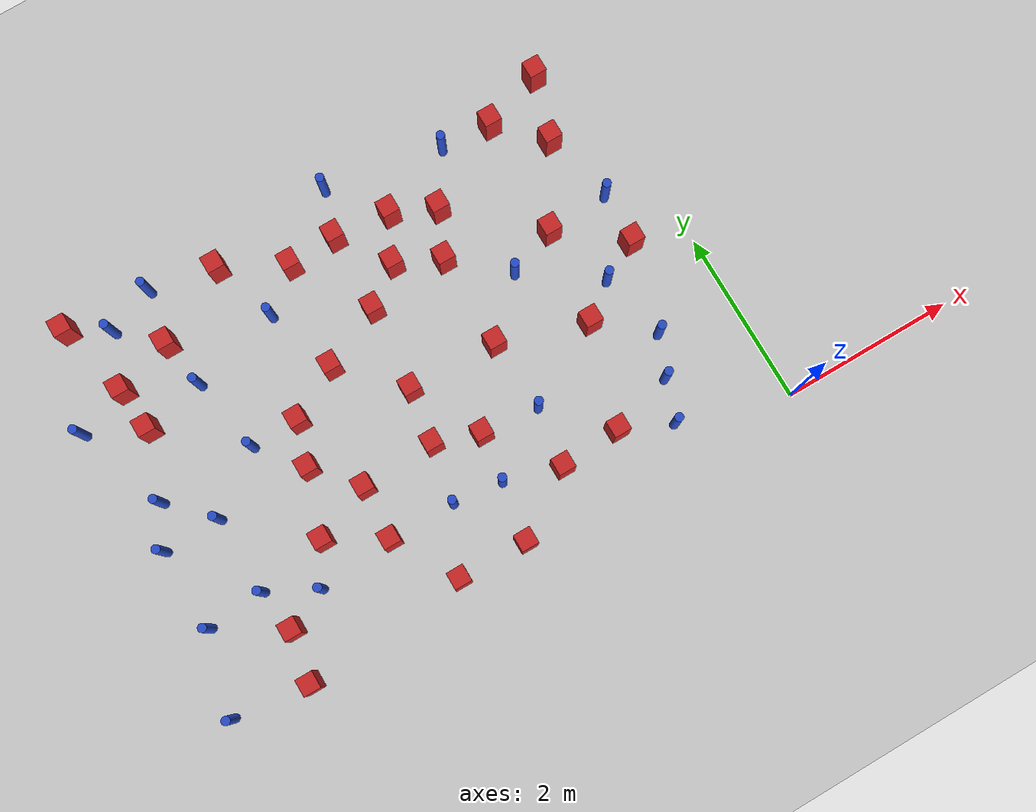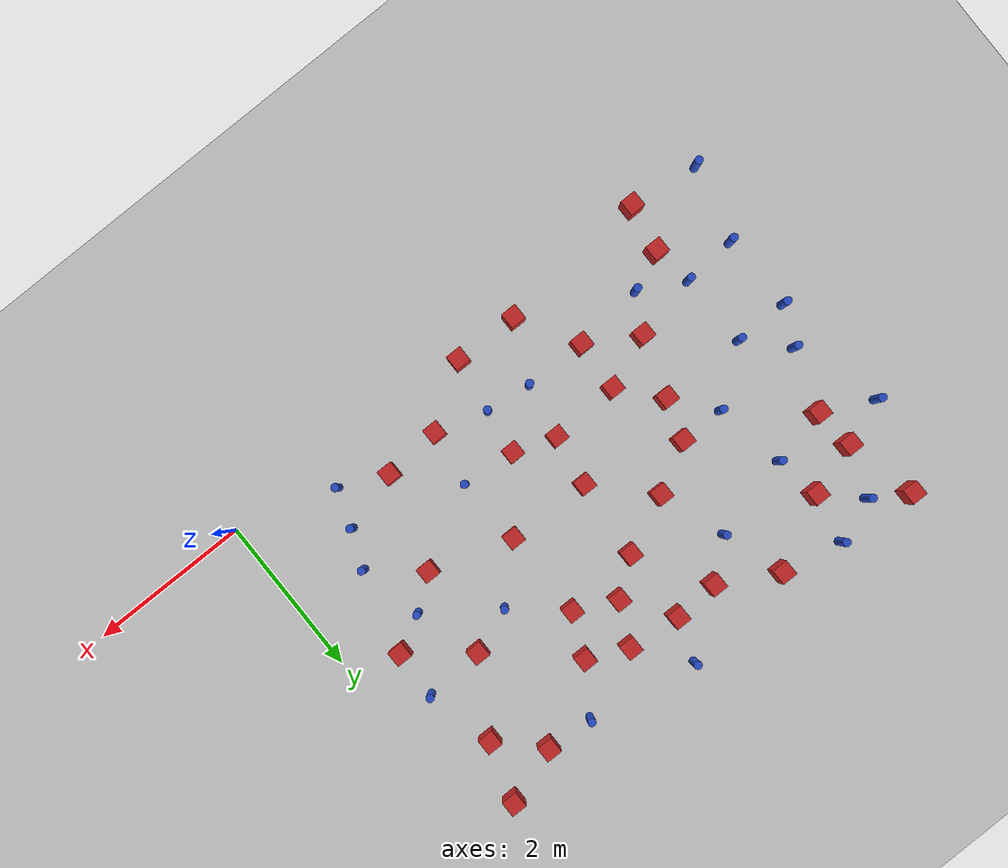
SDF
<sdf version="1.6">
 <world name="default">
  <model name="ground_plane">
   <static>1</static>
   <link name="link">
    <collision name="collision">
     <geometry><plane><normal>0 0 1</normal><size>100 100</size></plane></geometry>
     <surface><friction><ode><mu>100</mu><mu2>50</mu2></ode></friction></surface>
    </collision>
    <visual name="visual">
     <cast_shadows>0</cast_shadows>
     <geometry><plane><normal>0 0 1</normal><size>100 100</size></plane></geometry>
     <material>
      <ambient>1.0 1.0 1.0 1.0</ambient>
      <diffuse>0.8 0.8 0.8 1.0</diffuse>
      <specular>0.01 0.01 0.01 1.000000</specular>
     </material>
    </visual>
   </link>
  </model>
  <model name="pole_obstacle1">
   <static>true</static>
   <pose>-6.87773396307 0.0528595417723 -9.47619616065e-06 5.49618799738e-07 2.36310414073e-07 -1.55090534795e-07</pose>
   <link name="link">
    <pose>0 0 0.3 0 -0 0</pose>
    <inertial>
     <mass>1</mass>
     <inertia><ixx>0.145833</ixx><ixy>0</ixy><ixz>0</ixz><iyy>0.145833</iyy><iyz>0</iyz><izz>0.125</izz></inertia>
    </inertial>
    <collision name="collision">
     <geometry><cylinder><radius>0.05</radius><length>.6</length></cylinder></geometry>
    </collision>
    <visual name="visual">
     <geometry><cylinder><radius>0.05</radius><length>.6</length></cylinder></geometry>
     <material>
      <script><name>Gazebo/Blue</name><uri>file://media/materials/scripts/gazebo.material</uri></script>
     </material>
    </visual>
   </link>
  </model>
  <model name="square_post_obstacle12">
   <static>true</static>
   <pose>-2.50106417843 2.11142147697 -6.11067671241e-07 -5.50515727128e-06 -8.79689657224e-07 2.37013304536e-05</pose>
   <link name="link">
    <pose>0 0 0.25 0 -0 0</pose>
    <inertial>
     <mass>100</mass>
     <inertia>
      <ixx>0.166667</ixx>
      <ixy>0</ixy>
      <ixz>0</ixz>
      <iyy>0.166667</iyy>
      <iyz>0</iyz>
      <izz>0.166667</izz>
     </inertia>
    </inertial>
    <collision name="collision"><geometry><box><size>.2 .2 .5</size></box></geometry></collision>
    <visual name="visual">
     <geometry><box><size>.2 .2 .5</size></box></geometry>
     <material>
      <script><name>Gazebo/Red</name><uri>file://media/materials/scripts/gazebo.material</uri></script>
     </material>
    </visual>
   </link>
  </model>
  <model name="pole_obstacle13">
   <static>true</static>
   <pose>-5.41343163855 0.755619386022 -9.47619616065e-06 5.49618799737e-07 2.36310414061e-07 -1.550905348e-07</pose>
   <link name="link">
    <pose>0 0 0.3 0 -0 0</pose>
    <inertial>
     <mass>1</mass>
     <inertia><ixx>0.145833</ixx><ixy>0</ixy><ixz>0</ixz><iyy>0.145833</iyy><iyz>0</iyz><izz>0.125</izz></inertia>
    </inertial>
    <collision name="collision">
     <geometry><cylinder><radius>0.05</radius><length>.6</length></cylinder></geometry>
    </collision>
    <visual name="visual">
     <geometry><cylinder><radius>0.05</radius><length>.6</length></cylinder></geometry>
     <material>
      <script><name>Gazebo/Blue</name><uri>file://media/materials/scripts/gazebo.material</uri></script>
     </material>
    </visual>
   </link>
  </model>
  <model name="pole_obstacle15">
   <static>true</static>
   <pose>-5.97070912726 1.04615369268 -9.47619616065e-06 5.49618799737e-07 2.36310414071e-07 -1.55090534795e-07</pose>
   <link name="link">
    <pose>0 0 0.3 0 -0 0</pose>
    <inertial>
     <mass>1</mass>
     <inertia><ixx>0.145833</ixx><ixy>0</ixy><ixz>0</ixz><iyy>0.145833</iyy><iyz>0</iyz><izz>0.125</izz></inertia>
    </inertial>
    <collision name="collision">
     <geometry><cylinder><radius>0.05</radius><length>.6</length></cylinder></geometry>
    </collision>
    <visual name="visual">
     <geometry><cylinder><radius>0.05</radius><length>.6</length></cylinder></geometry>
     <material>
      <script><name>Gazebo/Blue</name><uri>file://media/materials/scripts/gazebo.material</uri></script>
     </material>
    </visual>
   </link>
  </model>
  <model name="square_post_obstacle29">
   <static>true</static>
   <pose>-1.29395501659 4.2736168441 -6.11067671241e-07 -5.50515727128e-06 -8.79689657224e-07 2.37013304536e-05</pose>
   <link name="link">
    <pose>0 0 0.25 0 -0 0</pose>
    <inertial>
     <mass>100</mass>
     <inertia>
      <ixx>0.166667</ixx>
      <ixy>0</ixy>
      <ixz>0</ixz>
      <iyy>0.166667</iyy>
      <iyz>0</iyz>
      <izz>0.166667</izz>
     </inertia>
    </inertial>
    <collision name="collision"><geometry><box><size>.2 .2 .5</size></box></geometry></collision>
    <visual name="visual">
     <geometry><box><size>.2 .2 .5</size></box></geometry>
     <material>
      <script><name>Gazebo/Red</name><uri>file://media/materials/scripts/gazebo.material</uri></script>
     </material>
    </visual>
   </link>
  </model>
  <model name="pole_obstacle24">
   <static>true</static>
   <pose>-5.31248529184 2.46069318207 -9.47619616065e-06 5.49618799738e-07 2.36310414051e-07 -1.55090534805e-07</pose>
   <link name="link">
    <pose>0 0 0.3 0 -0 0</pose>
    <inertial>
     <mass>1</mass>
     <inertia><ixx>0.145833</ixx><ixy>0</ixy><ixz>0</ixz><iyy>0.145833</iyy><iyz>0</iyz><izz>0.125</izz></inertia>
    </inertial>
    <collision name="collision">
     <geometry><cylinder><radius>0.05</radius><length>.6</length></cylinder></geometry>
    </collision>
    <visual name="visual">
     <geometry><cylinder><radius>0.05</radius><length>.6</length></cylinder></geometry>
     <material>
      <script><name>Gazebo/Blue</name><uri>file://media/materials/scripts/gazebo.material</uri></script>
     </material>
    </visual>
   </link>
  </model>
  <model name="pole_obstacle34">
   <static>true</static>
   <pose>-5.99398679914 1.95543988305 -9.47619616065e-06 5.49618799737e-07 2.36310414075e-07 -1.55090534793e-07</pose>
   <link name="link">
    <pose>0 0 0.3 0 -0 0</pose>
    <inertial>
     <mass>1</mass>
     <inertia><ixx>0.145833</ixx><ixy>0</ixy><ixz>0</ixz><iyy>0.145833</iyy><iyz>0</iyz><izz>0.125</izz></inertia>
    </inertial>
    <collision name="collision">
     <geometry><cylinder><radius>0.05</radius><length>.6</length></cylinder></geometry>
    </collision>
    <visual name="visual">
     <geometry><cylinder><radius>0.05</radius><length>.6</length></cylinder></geometry>
     <material>
      <script><name>Gazebo/Blue</name><uri>file://media/materials/scripts/gazebo.material</uri></script>
     </material>
    </visual>
   </link>
  </model>
  <model name="square_post_obstacle44">
   <static>true</static>
   <pose>-3.41731992865 4.02044685054 -6.11067671241e-07 -5.50515727128e-06 -8.79689657224e-07 2.37013304536e-05</pose>
   <link name="link">
    <pose>0 0 0.25 0 -0 0</pose>
    <inertial>
     <mass>100</mass>
     <inertia>
      <ixx>0.166667</ixx>
      <ixy>0</ixy>
      <ixz>0</ixz>
      <iyy>0.166667</iyy>
      <iyz>0</iyz>
      <izz>0.166667</izz>
     </inertia>
    </inertial>
    <collision name="collision"><geometry><box><size>.2 .2 .5</size></box></geometry></collision>
    <visual name="visual">
     <geometry><box><size>.2 .2 .5</size></box></geometry>
     <material>
      <script><name>Gazebo/Red</name><uri>file://media/materials/scripts/gazebo.material</uri></script>
     </material>
    </visual>
   </link>
  </model>
  <model name="square_post_obstacle51">
   <static>true</static>
   <pose>-3.53381424019 2.13756344961 -6.11067671241e-07 -5.50515727128e-06 -8.79689657224e-07 2.37013304536e-05</pose>
   <link name="link">
    <pose>0 0 0.25 0 -0 0</pose>
    <inertial>
     <mass>100</mass>
     <inertia>
      <ixx>0.166667</ixx>
      <ixy>0</ixy>
      <ixz>0</ixz>
      <iyy>0.166667</iyy>
      <iyz>0</iyz>
      <izz>0.166667</izz>
     </inertia>
    </inertial>
    <collision name="collision"><geometry><box><size>.2 .2 .5</size></box></geometry></collision>
    <visual name="visual">
     <geometry><box><size>.2 .2 .5</size></box></geometry>
     <material>
      <script><name>Gazebo/Red</name><uri>file://media/materials/scripts/gazebo.material</uri></script>
     </material>
    </visual>
   </link>
  </model>
  <model name="pole_obstacle51">
   <static>true</static>
   <pose>-3.75921423515 0.833750473704 -9.47619616065e-06 5.49618799738e-07 2.36310414075e-07 -1.55090534793e-07</pose>
   <link name="link">
    <pose>0 0 0.3 0 -0 0</pose>
    <inertial>
     <mass>1</mass>
     <inertia><ixx>0.145833</ixx><ixy>0</ixy><ixz>0</ixz><iyy>0.145833</iyy><iyz>0</iyz><izz>0.125</izz></inertia>
    </inertial>
    <collision name="collision">
     <geometry><cylinder><radius>0.05</radius><length>.6</length></cylinder></geometry>
    </collision>
    <visual name="visual">
     <geometry><cylinder><radius>0.05</radius><length>.6</length></cylinder></geometry>
     <material>
      <script><name>Gazebo/Blue</name><uri>file://media/materials/scripts/gazebo.material</uri></script>
     </material>
    </visual>
   </link>
  </model>
  <model name="pole_obstacle55">
   <static>true</static>
   <pose>-6.63668803881 0.99675324413 -9.47619616065e-06 5.49618799737e-07 2.36310414073e-07 -1.55090534792e-07</pose>
   <link name="link">
    <pose>0 0 0.3 0 -0 0</pose>
    <inertial>
     <mass>1</mass>
     <inertia><ixx>0.145833</ixx><ixy>0</ixy><ixz>0</ixz><iyy>0.145833</iyy><iyz>0</iyz><izz>0.125</izz></inertia>
    </inertial>
    <collision name="collision">
     <geometry><cylinder><radius>0.05</radius><length>.6</length></cylinder></geometry>
    </collision>
    <visual name="visual">
     <geometry><cylinder><radius>0.05</radius><length>.6</length></cylinder></geometry>
     <material>
      <script><name>Gazebo/Blue</name><uri>file://media/materials/scripts/gazebo.material</uri></script>
     </material>
    </visual>
   </link>
  </model>
  <model name="pole_obstacle60">
   <static>true</static>
   <pose>-4.4379792517 3.61402588025 -9.47619616065e-06 5.49618799738e-07 2.36310414051e-07 -1.55090534805e-07</pose>
   <link name="link">
    <pose>0 0 0.3 0 -0 0</pose>
    <inertial>
     <mass>1</mass>
     <inertia><ixx>0.145833</ixx><ixy>0</ixy><ixz>0</ixz><iyy>0.145833</iyy><iyz>0</iyz><izz>0.125</izz></inertia>
    </inertial>
    <collision name="collision">
     <geometry><cylinder><radius>0.05</radius><length>.6</length></cylinder></geometry>
    </collision>
    <visual name="visual">
     <geometry><cylinder><radius>0.05</radius><length>.6</length></cylinder></geometry>
     <material>
      <script><name>Gazebo/Blue</name><uri>file://media/materials/scripts/gazebo.material</uri></script>
     </material>
    </visual>
   </link>
  </model>
  <model name="square_post_obstacle62">
   <static>true</static>
   <pose>-5.88556385335 0.543653009103 -6.11067671241e-07 -5.50515727128e-06 -8.79689657224e-07 2.37013304536e-05</pose>
   <link name="link">
    <pose>0 0 0.25 0 -0 0</pose>
    <inertial>
     <mass>100</mass>
     <inertia>
      <ixx>0.166667</ixx>
      <ixy>0</ixy>
      <ixz>0</ixz>
      <iyy>0.166667</iyy>
      <iyz>0</iyz>
      <izz>0.166667</izz>
     </inertia>
    </inertial>
    <collision name="collision"><geometry><box><size>.2 .2 .5</size></box></geometry></collision>
    <visual name="visual">
     <geometry><box><size>.2 .2 .5</size></box></geometry>
     <material>
      <script><name>Gazebo/Red</name><uri>file://media/materials/scripts/gazebo.material</uri></script>
     </material>
    </visual>
   </link>
  </model>
  <model name="pole_obstacle61">
   <static>true</static>
   <pose>-6.82044860665 3.49995720872 -9.47619616065e-06 5.49618799738e-07 2.36310414051e-07 -1.55090534805e-07</pose>
   <link name="link">
    <pose>0 0 0.3 0 -0 0</pose>
    <inertial>
     <mass>1</mass>
     <inertia><ixx>0.145833</ixx><ixy>0</ixy><ixz>0</ixz><iyy>0.145833</iyy><iyz>0</iyz><izz>0.125</izz></inertia>
    </inertial>
    <collision name="collision">
     <geometry><cylinder><radius>0.05</radius><length>.6</length></cylinder></geometry>
    </collision>
    <visual name="visual">
     <geometry><cylinder><radius>0.05</radius><length>.6</length></cylinder></geometry>
     <material>
      <script><name>Gazebo/Blue</name><uri>file://media/materials/scripts/gazebo.material</uri></script>
     </material>
    </visual>
   </link>
  </model>
  <model name="square_post_obstacle65">
   <static>true</static>
   <pose>-6.44373114522 4.59457558672 -6.11067671241e-07 -5.50515727128e-06 -8.79689657224e-07 2.37013304536e-05</pose>
   <link name="link">
    <pose>0 0 0.25 0 -0 0</pose>
    <inertial>
     <mass>100</mass>
     <inertia>
      <ixx>0.166667</ixx>
      <ixy>0</ixy>
      <ixz>0</ixz>
      <iyy>0.166667</iyy>
      <iyz>0</iyz>
      <izz>0.166667</izz>
     </inertia>
    </inertial>
    <collision name="collision"><geometry><box><size>.2 .2 .5</size></box></geometry></collision>
    <visual name="visual">
     <geometry><box><size>.2 .2 .5</size></box></geometry>
     <material>
      <script><name>Gazebo/Red</name><uri>file://media/materials/scripts/gazebo.material</uri></script>
     </material>
    </visual>
   </link>
  </model>
  <model name="square_post_obstacle67">
   <static>true</static>
   <pose>-5.56579044386 3.91057907531 -6.11067671241e-07 -5.50515727128e-06 -8.79689657224e-07 2.37013304536e-05</pose>
   <link name="link">
    <pose>0 0 0.25 0 -0 0</pose>
    <inertial>
     <mass>100</mass>
     <inertia>
      <ixx>0.166667</ixx>
      <ixy>0</ixy>
      <ixz>0</ixz>
      <iyy>0.166667</iyy>
      <iyz>0</iyz>
      <izz>0.166667</izz>
     </inertia>
    </inertial>
    <collision name="collision"><geometry><box><size>.2 .2 .5</size></box></geometry></collision>
    <visual name="visual">
     <geometry><box><size>.2 .2 .5</size></box></geometry>
     <material>
      <script><name>Gazebo/Red</name><uri>file://media/materials/scripts/gazebo.material</uri></script>
     </material>
    </visual>
   </link>
  </model>
  <model name="square_post_obstacle79">
   <static>true</static>
   <pose>-4.15420953803 2.78749700027 -6.11067671241e-07 -5.50515727128e-06 -8.79689657224e-07 2.37013304536e-05</pose>
   <link name="link">
    <pose>0 0 0.25 0 -0 0</pose>
    <inertial>
     <mass>100</mass>
     <inertia>
      <ixx>0.166667</ixx>
      <ixy>0</ixy>
      <ixz>0</ixz>
      <iyy>0.166667</iyy>
      <iyz>0</iyz>
      <izz>0.166667</izz>
     </inertia>
    </inertial>
    <collision name="collision"><geometry><box><size>.2 .2 .5</size></box></geometry></collision>
    <visual name="visual">
     <geometry><box><size>.2 .2 .5</size></box></geometry>
     <material>
      <script><name>Gazebo/Red</name><uri>file://media/materials/scripts/gazebo.material</uri></script>
     </material>
    </visual>
   </link>
  </model>
  <model name="square_post_obstacle81">
   <static>true</static>
   <pose>-0.81365176295 3.78166607979 -6.11067671241e-07 -5.50515727128e-06 -8.79689657224e-07 2.37013304536e-05</pose>
   <link name="link">
    <pose>0 0 0.25 0 -0 0</pose>
    <inertial>
     <mass>100</mass>
     <inertia>
      <ixx>0.166667</ixx>
      <ixy>0</ixy>
      <ixz>0</ixz>
      <iyy>0.166667</iyy>
      <iyz>0</iyz>
      <izz>0.166667</izz>
     </inertia>
    </inertial>
    <collision name="collision"><geometry><box><size>.2 .2 .5</size></box></geometry></collision>
    <visual name="visual">
     <geometry><box><size>.2 .2 .5</size></box></geometry>
     <material>
      <script><name>Gazebo/Red</name><uri>file://media/materials/scripts/gazebo.material</uri></script>
     </material>
    </visual>
   </link>
  </model>
  <model name="square_post_obstacle83">
   <static>true</static>
   <pose>-2.76410070718 3.95368345906 -6.11067671241e-07 -5.50515727128e-06 -8.79689657224e-07 2.37013304536e-05</pose>
   <link name="link">
    <pose>0 0 0.25 0 -0 0</pose>
    <inertial>
     <mass>100</mass>
     <inertia>
      <ixx>0.166667</ixx>
      <ixy>0</ixy>
      <ixz>0</ixz>
      <iyy>0.166667</iyy>
      <iyz>0</iyz>
      <izz>0.166667</izz>
     </inertia>
    </inertial>
    <collision name="collision"><geometry><box><size>.2 .2 .5</size></box></geometry></collision>
    <visual name="visual">
     <geometry><box><size>.2 .2 .5</size></box></geometry>
     <material>
      <script><name>Gazebo/Red</name><uri>file://media/materials/scripts/gazebo.material</uri></script>
     </material>
    </visual>
   </link>
  </model>
  <model name="pole_obstacle101">
   <static>true</static>
   <pose>-6.00860608089 4.331102928 -9.47619616065e-06 5.49618799737e-07 2.36310414037e-07 -1.55090534814e-07</pose>
   <link name="link">
    <pose>0 0 0.3 0 -0 0</pose>
    <inertial>
     <mass>1</mass>
     <inertia><ixx>0.145833</ixx><ixy>0</ixy><ixz>0</ixz><iyy>0.145833</iyy><iyz>0</iyz><izz>0.125</izz></inertia>
    </inertial>
    <collision name="collision">
     <geometry><cylinder><radius>0.05</radius><length>.6</length></cylinder></geometry>
    </collision>
    <visual name="visual">
     <geometry><cylinder><radius>0.05</radius><length>.6</length></cylinder></geometry>
     <material>
      <script><name>Gazebo/Blue</name><uri>file://media/materials/scripts/gazebo.material</uri></script>
     </material>
    </visual>
   </link>
  </model>
  <model name="square_post_obstacle95">
   <static>true</static>
   <pose>-6.22444925274 3.70217358611 -6.11067671241e-07 -5.50515727128e-06 -8.79689657224e-07 2.37013304536e-05</pose>
   <link name="link">
    <pose>0 0 0.25 0 -0 0</pose>
    <inertial>
     <mass>100</mass>
     <inertia>
      <ixx>0.166667</ixx>
      <ixy>0</ixy>
      <ixz>0</ixz>
      <iyy>0.166667</iyy>
      <iyz>0</iyz>
      <izz>0.166667</izz>
     </inertia>
    </inertial>
    <collision name="collision"><geometry><box><size>.2 .2 .5</size></box></geometry></collision>
    <visual name="visual">
     <geometry><box><size>.2 .2 .5</size></box></geometry>
     <material>
      <script><name>Gazebo/Red</name><uri>file://media/materials/scripts/gazebo.material</uri></script>
     </material>
    </visual>
   </link>
  </model>
  <model name="square_post_obstacle96">
   <static>true</static>
   <pose>-3.63206450041 1.50615372437 -6.11067671241e-07 -5.50515727128e-06 -8.79689657224e-07 2.37013304536e-05</pose>
   <link name="link">
    <pose>0 0 0.25 0 -0 0</pose>
    <inertial>
     <mass>100</mass>
     <inertia>
      <ixx>0.166667</ixx>
      <ixy>0</ixy>
      <ixz>0</ixz>
      <iyy>0.166667</iyy>
      <iyz>0</iyz>
      <izz>0.166667</izz>
     </inertia>
    </inertial>
    <collision name="collision"><geometry><box><size>.2 .2 .5</size></box></geometry></collision>
    <visual name="visual">
     <geometry><box><size>.2 .2 .5</size></box></geometry>
     <material>
      <script><name>Gazebo/Red</name><uri>file://media/materials/scripts/gazebo.material</uri></script>
     </material>
    </visual>
   </link>
  </model>
  <model name="square_post_obstacle99">
   <static>true</static>
   <pose>-0.635658933604 2.33465070801 -6.11067671241e-07 -5.50515727128e-06 -8.79689657224e-07 2.37013304536e-05</pose>
   <link name="link">
    <pose>0 0 0.25 0 -0 0</pose>
    <inertial>
     <mass>100</mass>
     <inertia>
      <ixx>0.166667</ixx>
      <ixy>0</ixy>
      <ixz>0</ixz>
      <iyy>0.166667</iyy>
      <iyz>0</iyz>
      <izz>0.166667</izz>
     </inertia>
    </inertial>
    <collision name="collision"><geometry><box><size>.2 .2 .5</size></box></geometry></collision>
    <visual name="visual">
     <geometry><box><size>.2 .2 .5</size></box></geometry>
     <material>
      <script><name>Gazebo/Red</name><uri>file://media/materials/scripts/gazebo.material</uri></script>
     </material>
    </visual>
   </link>
  </model>
  <model name="pole_obstacle120">
   <static>true</static>
   <pose>-6.66496061448 1.9500577451 -9.47619616065e-06 5.49618799737e-07 2.36310414075e-07 -1.55090534793e-07</pose>
   <link name="link">
    <pose>0 0 0.3 0 -0 0</pose>
    <inertial>
     <mass>1</mass>
     <inertia><ixx>0.145833</ixx><ixy>0</ixy><ixz>0</ixz><iyy>0.145833</iyy><iyz>0</iyz><izz>0.125</izz></inertia>
    </inertial>
    <collision name="collision">
     <geometry><cylinder><radius>0.05</radius><length>.6</length></cylinder></geometry>
    </collision>
    <visual name="visual">
     <geometry><cylinder><radius>0.05</radius><length>.6</length></cylinder></geometry>
     <material>
      <script><name>Gazebo/Blue</name><uri>file://media/materials/scripts/gazebo.material</uri></script>
     </material>
    </visual>
   </link>
  </model>
  <model name="square_post_obstacle113">
   <static>true</static>
   <pose>-4.69406440721 4.37644022297 -6.11067671241e-07 -5.50515727128e-06 -8.79689657224e-07 2.37013304536e-05</pose>
   <link name="link">
    <pose>0 0 0.25 0 -0 0</pose>
    <inertial>
     <mass>100</mass>
     <inertia>
      <ixx>0.166667</ixx>
      <ixy>0</ixy>
      <ixz>0</ixz>
      <iyy>0.166667</iyy>
      <iyz>0</iyz>
      <izz>0.166667</izz>
     </inertia>
    </inertial>
    <collision name="collision"><geometry><box><size>.2 .2 .5</size></box></geometry></collision>
    <visual name="visual">
     <geometry><box><size>.2 .2 .5</size></box></geometry>
     <material>
      <script><name>Gazebo/Red</name><uri>file://media/materials/scripts/gazebo.material</uri></script>
     </material>
    </visual>
   </link>
  </model>
  <model name="pole_obstacle132">
   <static>true</static>
   <pose>-0.602488878632 2.93999742721 -9.47619616065e-06 5.49618799737e-07 2.36310414066e-07 -1.55090534797e-07</pose>
   <link name="link">
    <pose>0 0 0.3 0 -0 0</pose>
    <inertial>
     <mass>1</mass>
     <inertia><ixx>0.145833</ixx><ixy>0</ixy><ixz>0</ixz><iyy>0.145833</iyy><iyz>0</iyz><izz>0.125</izz></inertia>
    </inertial>
    <collision name="collision">
     <geometry><cylinder><radius>0.05</radius><length>.6</length></cylinder></geometry>
    </collision>
    <visual name="visual">
     <geometry><cylinder><radius>0.05</radius><length>.6</length></cylinder></geometry>
     <material>
      <script><name>Gazebo/Blue</name><uri>file://media/materials/scripts/gazebo.material</uri></script>
     </material>
    </visual>
   </link>
  </model>
  <model name="pole_obstacle134">
   <static>true</static>
   <pose>-0.90121671319 1.30552956279 -9.47619616065e-06 5.49618799738e-07 2.36310414061e-07 -1.55090534801e-07</pose>
   <link name="link">
    <pose>0 0 0.3 0 -0 0</pose>
    <inertial>
     <mass>1</mass>
     <inertia><ixx>0.145833</ixx><ixy>0</ixy><ixz>0</ixz><iyy>0.145833</iyy><iyz>0</iyz><izz>0.125</izz></inertia>
    </inertial>
    <collision name="collision">
     <geometry><cylinder><radius>0.05</radius><length>.6</length></cylinder></geometry>
    </collision>
    <visual name="visual">
     <geometry><cylinder><radius>0.05</radius><length>.6</length></cylinder></geometry>
     <material>
      <script><name>Gazebo/Blue</name><uri>file://media/materials/scripts/gazebo.material</uri></script>
     </material>
    </visual>
   </link>
  </model>
  <model name="square_post_obstacle117">
   <static>true</static>
   <pose>-1.8432046106 0.628393433691 -6.11067671241e-07 -5.50515727128e-06 -8.79689657224e-07 2.37013304536e-05</pose>
   <link name="link">
    <pose>0 0 0.25 0 -0 0</pose>
    <inertial>
     <mass>100</mass>
     <inertia>
      <ixx>0.166667</ixx>
      <ixy>0</ixy>
      <ixz>0</ixz>
      <iyy>0.166667</iyy>
      <iyz>0</iyz>
      <izz>0.166667</izz>
     </inertia>
    </inertial>
    <collision name="collision"><geometry><box><size>.2 .2 .5</size></box></geometry></collision>
    <visual name="visual">
     <geometry><box><size>.2 .2 .5</size></box></geometry>
     <material>
      <script><name>Gazebo/Red</name><uri>file://media/materials/scripts/gazebo.material</uri></script>
     </material>
    </visual>
   </link>
  </model>
  <model name="pole_obstacle137">
   <static>true</static>
   <pose>-2.4471101318 1.26904152162 -9.47619616065e-06 5.49618799737e-07 2.36310414072e-07 -1.55090534793e-07</pose>
   <link name="link">
    <pose>0 0 0.3 0 -0 0</pose>
    <inertial>
     <mass>1</mass>
     <inertia><ixx>0.145833</ixx><ixy>0</ixy><ixz>0</ixz><iyy>0.145833</iyy><iyz>0</iyz><izz>0.125</izz></inertia>
    </inertial>
    <collision name="collision">
     <geometry><cylinder><radius>0.05</radius><length>.6</length></cylinder></geometry>
    </collision>
    <visual name="visual">
     <geometry><cylinder><radius>0.05</radius><length>.6</length></cylinder></geometry>
     <material>
      <script><name>Gazebo/Blue</name><uri>file://media/materials/scripts/gazebo.material</uri></script>
     </material>
    </visual>
   </link>
  </model>
  <model name="square_post_obstacle120">
   <static>true</static>
   <pose>-1.3458340189 2.89010990809 -6.11067671241e-07 -5.50515727128e-06 -8.79689657224e-07 2.37013304536e-05</pose>
   <link name="link">
    <pose>0 0 0.25 0 -0 0</pose>
    <inertial>
     <mass>100</mass>
     <inertia>
      <ixx>0.166667</ixx>
      <ixy>0</ixy>
      <ixz>0</ixz>
      <iyy>0.166667</iyy>
      <iyz>0</iyz>
      <izz>0.166667</izz>
     </inertia>
    </inertial>
    <collision name="collision"><geometry><box><size>.2 .2 .5</size></box></geometry></collision>
    <visual name="visual">
     <geometry><box><size>.2 .2 .5</size></box></geometry>
     <material>
      <script><name>Gazebo/Red</name><uri>file://media/materials/scripts/gazebo.material</uri></script>
     </material>
    </visual>
   </link>
  </model>
  <model name="square_post_obstacle129">
   <static>true</static>
   <pose>-3.29946241068 0.0930775829084 -6.11067671241e-07 -5.50515727128e-06 -8.79689657224e-07 2.37013304536e-05</pose>
   <link name="link">
    <pose>0 0 0.25 0 -0 0</pose>
    <inertial>
     <mass>100</mass>
     <inertia>
      <ixx>0.166667</ixx>
      <ixy>0</ixy>
      <ixz>0</ixz>
      <iyy>0.166667</iyy>
      <iyz>0</iyz>
      <izz>0.166667</izz>
     </inertia>
    </inertial>
    <collision name="collision"><geometry><box><size>.2 .2 .5</size></box></geometry></collision>
    <visual name="visual">
     <geometry><box><size>.2 .2 .5</size></box></geometry>
     <material>
      <script><name>Gazebo/Red</name><uri>file://media/materials/scripts/gazebo.material</uri></script>
     </material>
    </visual>
   </link>
  </model>
  <model name="pole_obstacle148">
   <static>true</static>
   <pose>-6.44209141901 2.4243738114 -9.47619616065e-06 5.49618799738e-07 2.36310414051e-07 -1.55090534805e-07</pose>
   <link name="link">
    <pose>0 0 0.3 0 -0 0</pose>
    <inertial>
     <mass>1</mass>
     <inertia><ixx>0.145833</ixx><ixy>0</ixy><ixz>0</ixz><iyy>0.145833</iyy><iyz>0</iyz><izz>0.125</izz></inertia>
    </inertial>
    <collision name="collision">
     <geometry><cylinder><radius>0.05</radius><length>.6</length></cylinder></geometry>
    </collision>
    <visual name="visual">
     <geometry><cylinder><radius>0.05</radius><length>.6</length></cylinder></geometry>
     <material>
      <script><name>Gazebo/Blue</name><uri>file://media/materials/scripts/gazebo.material</uri></script>
     </material>
    </visual>
   </link>
  </model>
  <model name="square_post_obstacle137">
   <static>true</static>
   <pose>-4.52829620115 0.843956384795 -6.11067671241e-07 -5.50515727128e-06 -8.79689657224e-07 2.37013304536e-05</pose>
   <link name="link">
    <pose>0 0 0.25 0 -0 0</pose>
    <inertial>
     <mass>100</mass>
     <inertia>
      <ixx>0.166667</ixx>
      <ixy>0</ixy>
      <ixz>0</ixz>
      <iyy>0.166667</iyy>
      <iyz>0</iyz>
      <izz>0.166667</izz>
     </inertia>
    </inertial>
    <collision name="collision"><geometry><box><size>.2 .2 .5</size></box></geometry></collision>
    <visual name="visual">
     <geometry><box><size>.2 .2 .5</size></box></geometry>
     <material>
      <script><name>Gazebo/Red</name><uri>file://media/materials/scripts/gazebo.material</uri></script>
     </material>
    </visual>
   </link>
  </model>
  <model name="square_post_obstacle142">
   <static>true</static>
   <pose>-5.98962074791 -0.0444694735066 -6.11067671241e-07 -5.50515727128e-06 -8.79689657224e-07 2.37013304536e-05</pose>
   <link name="link">
    <pose>0 0 0.25 0 -0 0</pose>
    <inertial>
     <mass>100</mass>
     <inertia>
      <ixx>0.166667</ixx>
      <ixy>0</ixy>
      <ixz>0</ixz>
      <iyy>0.166667</iyy>
      <iyz>0</iyz>
      <izz>0.166667</izz>
     </inertia>
    </inertial>
    <collision name="collision"><geometry><box><size>.2 .2 .5</size></box></geometry></collision>
    <visual name="visual">
     <geometry><box><size>.2 .2 .5</size></box></geometry>
     <material>
      <script><name>Gazebo/Red</name><uri>file://media/materials/scripts/gazebo.material</uri></script>
     </material>
    </visual>
   </link>
  </model>
  <model name="square_post_obstacle145">
   <static>true</static>
   <pose>-4.9067506566 1.9523720094 -6.11067671241e-07 -5.50515727128e-06 -8.79689657224e-07 2.37013304536e-05</pose>
   <link name="link">
    <pose>0 0 0.25 0 -0 0</pose>
    <inertial>
     <mass>100</mass>
     <inertia>
      <ixx>0.166667</ixx>
      <ixy>0</ixy>
      <ixz>0</ixz>
      <iyy>0.166667</iyy>
      <iyz>0</iyz>
      <izz>0.166667</izz>
     </inertia>
    </inertial>
    <collision name="collision"><geometry><box><size>.2 .2 .5</size></box></geometry></collision>
    <visual name="visual">
     <geometry><box><size>.2 .2 .5</size></box></geometry>
     <material>
      <script><name>Gazebo/Red</name><uri>file://media/materials/scripts/gazebo.material</uri></script>
     </material>
    </visual>
   </link>
  </model>
  <model name="square_post_obstacle152">
   <static>true</static>
   <pose>-3.98182474504 3.99002077434 -6.11067671241e-07 -5.50515727128e-06 -8.79689657224e-07 2.37013304536e-05</pose>
   <link name="link">
    <pose>0 0 0.25 0 -0 0</pose>
    <inertial>
     <mass>100</mass>
     <inertia>
      <ixx>0.166667</ixx>
      <ixy>0</ixy>
      <ixz>0</ixz>
      <iyy>0.166667</iyy>
      <iyz>0</iyz>
      <izz>0.166667</izz>
     </inertia>
    </inertial>
    <collision name="collision"><geometry><box><size>.2 .2 .5</size></box></geometry></collision>
    <visual name="visual">
     <geometry><box><size>.2 .2 .5</size></box></geometry>
     <material>
      <script><name>Gazebo/Red</name><uri>file://media/materials/scripts/gazebo.material</uri></script>
     </material>
    </visual>
   </link>
  </model>
  <model name="pole_obstacle166">
   <static>true</static>
   <pose>-1.87965694933 4.31914949361 -9.47619616065e-06 5.49618799737e-07 2.36310414061e-07 -1.550905348e-07</pose>
   <link name="link">
    <pose>0 0 0.3 0 -0 0</pose>
    <inertial>
     <mass>1</mass>
     <inertia><ixx>0.145833</ixx><ixy>0</ixy><ixz>0</ixz><iyy>0.145833</iyy><iyz>0</iyz><izz>0.125</izz></inertia>
    </inertial>
    <collision name="collision">
     <geometry><cylinder><radius>0.05</radius><length>.6</length></cylinder></geometry>
    </collision>
    <visual name="visual">
     <geometry><cylinder><radius>0.05</radius><length>.6</length></cylinder></geometry>
     <material>
      <script><name>Gazebo/Blue</name><uri>file://media/materials/scripts/gazebo.material</uri></script>
     </material>
    </visual>
   </link>
  </model>
  <model name="square_post_obstacle160">
   <static>true</static>
   <pose>-4.49235887239 1.47001937799 -6.11067671241e-07 -5.50515727128e-06 -8.79689657224e-07 2.37013304536e-05</pose>
   <link name="link">
    <pose>0 0 0.25 0 -0 0</pose>
    <inertial>
     <mass>100</mass>
     <inertia>
      <ixx>0.166667</ixx>
      <ixy>0</ixy>
      <ixz>0</ixz>
      <iyy>0.166667</iyy>
      <iyz>0</iyz>
      <izz>0.166667</izz>
     </inertia>
    </inertial>
    <collision name="collision"><geometry><box><size>.2 .2 .5</size></box></geometry></collision>
    <visual name="visual">
     <geometry><box><size>.2 .2 .5</size></box></geometry>
     <material>
      <script><name>Gazebo/Red</name><uri>file://media/materials/scripts/gazebo.material</uri></script>
     </material>
    </visual>
   </link>
  </model>
  <model name="square_post_obstacle163">
   <static>true</static>
   <pose>-4.7486755187 2.45541379162 -6.11067671241e-07 -5.50515727128e-06 -8.79689657224e-07 2.37013304536e-05</pose>
   <link name="link">
    <pose>0 0 0.25 0 -0 0</pose>
    <inertial>
     <mass>100</mass>
     <inertia>
      <ixx>0.166667</ixx>
      <ixy>0</ixy>
      <ixz>0</ixz>
      <iyy>0.166667</iyy>
      <iyz>0</iyz>
      <izz>0.166667</izz>
     </inertia>
    </inertial>
    <collision name="collision"><geometry><box><size>.2 .2 .5</size></box></geometry></collision>
    <visual name="visual">
     <geometry><box><size>.2 .2 .5</size></box></geometry>
     <material>
      <script><name>Gazebo/Red</name><uri>file://media/materials/scripts/gazebo.material</uri></script>
     </material>
    </visual>
   </link>
  </model>
  <model name="square_post_obstacle165">
   <static>true</static>
   <pose>-3.44765960068 3.10896501711 -6.11067671241e-07 -5.50515727128e-06 -8.79689657224e-07 2.37013304536e-05</pose>
   <link name="link">
    <pose>0 0 0.25 0 -0 0</pose>
    <inertial>
     <mass>100</mass>
     <inertia>
      <ixx>0.166667</ixx>
      <ixy>0</ixy>
      <ixz>0</ixz>
      <iyy>0.166667</iyy>
      <iyz>0</iyz>
      <izz>0.166667</izz>
     </inertia>
    </inertial>
    <collision name="collision"><geometry><box><size>.2 .2 .5</size></box></geometry></collision>
    <visual name="visual">
     <geometry><box><size>.2 .2 .5</size></box></geometry>
     <material>
      <script><name>Gazebo/Red</name><uri>file://media/materials/scripts/gazebo.material</uri></script>
     </material>
    </visual>
   </link>
  </model>
  <model name="pole_obstacle179">
   <static>true</static>
   <pose>-1.26317903978 0.367890952186 -9.47619616065e-06 5.49618799737e-07 2.36310414064e-07 -1.55090534799e-07</pose>
   <link name="link">
    <pose>0 0 0.3 0 -0 0</pose>
    <inertial>
     <mass>1</mass>
     <inertia><ixx>0.145833</ixx><ixy>0</ixy><ixz>0</ixz><iyy>0.145833</iyy><iyz>0</iyz><izz>0.125</izz></inertia>
    </inertial>
    <collision name="collision">
     <geometry><cylinder><radius>0.05</radius><length>.6</length></cylinder></geometry>
    </collision>
    <visual name="visual">
     <geometry><cylinder><radius>0.05</radius><length>.6</length></cylinder></geometry>
     <material>
      <script><name>Gazebo/Blue</name><uri>file://media/materials/scripts/gazebo.material</uri></script>
     </material>
    </visual>
   </link>
  </model>
  <model name="square_post_obstacle178">
   <static>true</static>
   <pose>-3.1182252194 1.32997402664 -6.11067671241e-07 -5.50515727128e-06 -8.79689657224e-07 2.37013304536e-05</pose>
   <link name="link">
    <pose>0 0 0.25 0 -0 0</pose>
    <inertial>
     <mass>100</mass>
     <inertia>
      <ixx>0.166667</ixx>
      <ixy>0</ixy>
      <ixz>0</ixz>
      <iyy>0.166667</iyy>
      <iyz>0</iyz>
      <izz>0.166667</izz>
     </inertia>
    </inertial>
    <collision name="collision"><geometry><box><size>.2 .2 .5</size></box></geometry></collision>
    <visual name="visual">
     <geometry><box><size>.2 .2 .5</size></box></geometry>
     <material>
      <script><name>Gazebo/Red</name><uri>file://media/materials/scripts/gazebo.material</uri></script>
     </material>
    </visual>
   </link>
  </model>
  <model name="square_post_obstacle181">
   <static>true</static>
   <pose>-6.17847346266 3.19087277172 -6.11067671241e-07 -5.50515727128e-06 -8.79689657224e-07 2.37013304536e-05</pose>
   <link name="link">
    <pose>0 0 0.25 0 -0 0</pose>
    <inertial>
     <mass>100</mass>
     <inertia>
      <ixx>0.166667</ixx>
      <ixy>0</ixy>
      <ixz>0</ixz>
      <iyy>0.166667</iyy>
      <iyz>0</iyz>
      <izz>0.166667</izz>
     </inertia>
    </inertial>
    <collision name="collision"><geometry><box><size>.2 .2 .5</size></box></geometry></collision>
    <visual name="visual">
     <geometry><box><size>.2 .2 .5</size></box></geometry>
     <material>
      <script><name>Gazebo/Red</name><uri>file://media/materials/scripts/gazebo.material</uri></script>
     </material>
    </visual>
   </link>
  </model>
  <model name="pole_obstacle189">
   <static>true</static>
   <pose>-5.4560804791 4.54037440053 -9.47619616065e-06 5.49618799737e-07 2.36310414037e-07 -1.55090534814e-07</pose>
   <link name="link">
    <pose>0 0 0.3 0 -0 0</pose>
    <inertial>
     <mass>1</mass>
     <inertia><ixx>0.145833</ixx><ixy>0</ixy><ixz>0</ixz><iyy>0.145833</iyy><iyz>0</iyz><izz>0.125</izz></inertia>
    </inertial>
    <collision name="collision">
     <geometry><cylinder><radius>0.05</radius><length>.6</length></cylinder></geometry>
    </collision>
    <visual name="visual">
     <geometry><cylinder><radius>0.05</radius><length>.6</length></cylinder></geometry>
     <material>
      <script><name>Gazebo/Blue</name><uri>file://media/materials/scripts/gazebo.material</uri></script>
     </material>
    </visual>
   </link>
  </model>
  <model name="pole_obstacle191">
   <static>true</static>
   <pose>-3.24120665471 4.56949705198 -9.47619616065e-06 5.49618799738e-07 2.3631041406e-07 -1.55090534801e-07</pose>
   <link name="link">
    <pose>0 0 0.3 0 -0 0</pose>
    <inertial>
     <mass>1</mass>
     <inertia><ixx>0.145833</ixx><ixy>0</ixy><ixz>0</ixz><iyy>0.145833</iyy><iyz>0</iyz><izz>0.125</izz></inertia>
    </inertial>
    <collision name="collision">
     <geometry><cylinder><radius>0.05</radius><length>.6</length></cylinder></geometry>
    </collision>
    <visual name="visual">
     <geometry><cylinder><radius>0.05</radius><length>.6</length></cylinder></geometry>
     <material>
      <script><name>Gazebo/Blue</name><uri>file://media/materials/scripts/gazebo.material</uri></script>
     </material>
    </visual>
   </link>
  </model>
  <model name="square_post_obstacle189">
   <static>true</static>
   <pose>-3.01252770742 3.43952736587 -6.11067671241e-07 -5.50515727128e-06 -8.79689657224e-07 2.37013304536e-05</pose>
   <link name="link">
    <pose>0 0 0.25 0 -0 0</pose>
    <inertial>
     <mass>100</mass>
     <inertia>
      <ixx>0.166667</ixx>
      <ixy>0</ixy>
      <ixz>0</ixz>
      <iyy>0.166667</iyy>
      <iyz>0</iyz>
      <izz>0.166667</izz>
     </inertia>
    </inertial>
    <collision name="collision"><geometry><box><size>.2 .2 .5</size></box></geometry></collision>
    <visual name="visual">
     <geometry><box><size>.2 .2 .5</size></box></geometry>
     <material>
      <script><name>Gazebo/Red</name><uri>file://media/materials/scripts/gazebo.material</uri></script>
     </material>
    </visual>
   </link>
  </model>
  <model name="pole_obstacle195">
   <static>true</static>
   <pose>-1.07866531484 2.1001889724 -9.47619616065e-06 5.49618799737e-07 2.36310414062e-07 -1.55090534798e-07</pose>
   <link name="link">
    <pose>0 0 0.3 0 -0 0</pose>
    <inertial>
     <mass>1</mass>
     <inertia><ixx>0.145833</ixx><ixy>0</ixy><ixz>0</ixz><iyy>0.145833</iyy><iyz>0</iyz><izz>0.125</izz></inertia>
    </inertial>
    <collision name="collision">
     <geometry><cylinder><radius>0.05</radius><length>.6</length></cylinder></geometry>
    </collision>
    <visual name="visual">
     <geometry><cylinder><radius>0.05</radius><length>.6</length></cylinder></geometry>
     <material>
      <script><name>Gazebo/Blue</name><uri>file://media/materials/scripts/gazebo.material</uri></script>
     </material>
    </visual>
   </link>
  </model>
  <model name="square_post_obstacle191">
   <static>true</static>
   <pose>-2.50438886615 3.19730707066 -6.11067671241e-07 -5.50515727128e-06 -8.79689657224e-07 2.37013304536e-05</pose>
   <link name="link">
    <pose>0 0 0.25 0 -0 0</pose>
    <inertial>
     <mass>100</mass>
     <inertia>
      <ixx>0.166667</ixx>
      <ixy>0</ixy>
      <ixz>0</ixz>
      <iyy>0.166667</iyy>
      <iyz>0</iyz>
      <izz>0.166667</izz>
     </inertia>
    </inertial>
    <collision name="collision"><geometry><box><size>.2 .2 .5</size></box></geometry></collision>
    <visual name="visual">
     <geometry><box><size>.2 .2 .5</size></box></geometry>
     <material>
      <script><name>Gazebo/Red</name><uri>file://media/materials/scripts/gazebo.material</uri></script>
     </material>
    </visual>
   </link>
  </model>
  <model name="square_post_obstacle194">
   <static>true</static>
   <pose>-1.48773551744 1.79193987965 -6.11067671241e-07 -5.50515727128e-06 -8.79689657224e-07 2.37013304536e-05</pose>
   <link name="link">
    <pose>0 0 0.25 0 -0 0</pose>
    <inertial>
     <mass>100</mass>
     <inertia>
      <ixx>0.166667</ixx>
      <ixy>0</ixy>
      <ixz>0</ixz>
      <iyy>0.166667</iyy>
      <iyz>0</iyz>
      <izz>0.166667</izz>
     </inertia>
    </inertial>
    <collision name="collision"><geometry><box><size>.2 .2 .5</size></box></geometry></collision>
    <visual name="visual">
     <geometry><box><size>.2 .2 .5</size></box></geometry>
     <material>
      <script><name>Gazebo/Red</name><uri>file://media/materials/scripts/gazebo.material</uri></script>
     </material>
    </visual>
   </link>
  </model>
  <model name="square_post_obstacle197">
   <static>true</static>
   <pose>-2.55289469464 0.582781685773 -6.11067671241e-07 -5.50515727128e-06 -8.79689657224e-07 2.37013304536e-05</pose>
   <link name="link">
    <pose>0 0 0.25 0 -0 0</pose>
    <inertial>
     <mass>100</mass>
     <inertia>
      <ixx>0.166667</ixx>
      <ixy>0</ixy>
      <ixz>0</ixz>
      <iyy>0.166667</iyy>
      <iyz>0</iyz>
      <izz>0.166667</izz>
     </inertia>
    </inertial>
    <collision name="collision"><geometry><box><size>.2 .2 .5</size></box></geometry></collision>
    <visual name="visual">
     <geometry><box><size>.2 .2 .5</size></box></geometry>
     <material>
      <script><name>Gazebo/Red</name><uri>file://media/materials/scripts/gazebo.material</uri></script>
     </material>
    </visual>
   </link>
  </model>
  <model name="pole_obstacle206">
   <static>true</static>
   <pose>-5.47593463636 3.34630706914 -9.47619616065e-06 5.49618799738e-07 2.36310414051e-07 -1.55090534805e-07</pose>
   <link name="link">
    <pose>0 0 0.3 0 -0 0</pose>
    <inertial>
     <mass>1</mass>
     <inertia><ixx>0.145833</ixx><ixy>0</ixy><ixz>0</ixz><iyy>0.145833</iyy><iyz>0</iyz><izz>0.125</izz></inertia>
    </inertial>
    <collision name="collision">
     <geometry><cylinder><radius>0.05</radius><length>.6</length></cylinder></geometry>
    </collision>
    <visual name="visual">
     <geometry><cylinder><radius>0.05</radius><length>.6</length></cylinder></geometry>
     <material>
      <script><name>Gazebo/Blue</name><uri>file://media/materials/scripts/gazebo.material</uri></script>
     </material>
    </visual>
   </link>
  </model>
  <model name="pole_obstacle221">
   <static>true</static>
   <pose>-1.10014233978 0.844221147409 -9.47619616065e-06 5.49618799737e-07 2.36310414065e-07 -1.55090534798e-07</pose>
   <link name="link">
    <pose>0 0 0.3 0 -0 0</pose>
    <inertial>
     <mass>1</mass>
     <inertia><ixx>0.145833</ixx><ixy>0</ixy><ixz>0</ixz><iyy>0.145833</iyy><iyz>0</iyz><izz>0.125</izz></inertia>
    </inertial>
    <collision name="collision">
     <geometry><cylinder><radius>0.05</radius><length>.6</length></cylinder></geometry>
    </collision>
    <visual name="visual">
     <geometry><cylinder><radius>0.05</radius><length>.6</length></cylinder></geometry>
     <material>
      <script><name>Gazebo/Blue</name><uri>file://media/materials/scripts/gazebo.material</uri></script>
     </material>
    </visual>
   </link>
  </model>
  <model name="pole_obstacle228">
   <static>true</static>
   <pose>-1.90597023871 2.6836493814 -9.47619616065e-06 5.49618799737e-07 2.36310414062e-07 -1.55090534798e-07</pose>
   <link name="link">
    <pose>0 0 0.3 0 -0 0</pose>
    <inertial>
     <mass>1</mass>
     <inertia><ixx>0.145833</ixx><ixy>0</ixy><ixz>0</ixz><iyy>0.145833</iyy><iyz>0</iyz><izz>0.125</izz></inertia>
    </inertial>
    <collision name="collision">
     <geometry><cylinder><radius>0.05</radius><length>.6</length></cylinder></geometry>
    </collision>
    <visual name="visual">
     <geometry><cylinder><radius>0.05</radius><length>.6</length></cylinder></geometry>
     <material>
      <script><name>Gazebo/Blue</name><uri>file://media/materials/scripts/gazebo.material</uri></script>
     </material>
    </visual>
   </link>
  </model>
  <model name="pole_obstacle229">
   <static>true</static>
   <pose>-3.18954991071 0.767239010345 -9.47619616065e-06 5.49618799738e-07 2.36310414075e-07 -1.55090534793e-07</pose>
   <link name="link">
    <pose>0 0 0.3 0 -0 0</pose>
    <inertial>
     <mass>1</mass>
     <inertia><ixx>0.145833</ixx><ixy>0</ixy><ixz>0</ixz><iyy>0.145833</iyy><iyz>0</iyz><izz>0.125</izz></inertia>
    </inertial>
    <collision name="collision">
     <geometry><cylinder><radius>0.05</radius><length>.6</length></cylinder></geometry>
    </collision>
    <visual name="visual">
     <geometry><cylinder><radius>0.05</radius><length>.6</length></cylinder></geometry>
     <material>
      <script><name>Gazebo/Blue</name><uri>file://media/materials/scripts/gazebo.material</uri></script>
     </material>
    </visual>
   </link>
  </model>
  <model name="square_post_obstacle198">
   <static>true</static>
   <pose>-4.1009600498 0.110140976878 -6.11067671241e-07 -5.50515727128e-06 -8.79689657224e-07 2.37013304536e-05</pose>
   <link name="link">
    <pose>0 0 0.25 0 -0 0</pose>
    <inertial>
     <mass>100</mass>
     <inertia>
      <ixx>0.166667</ixx>
      <ixy>0</ixy>
      <ixz>0</ixz>
      <iyy>0.166667</iyy>
      <iyz>0</iyz>
      <izz>0.166667</izz>
     </inertia>
    </inertial>
    <collision name="collision"><geometry><box><size>.2 .2 .5</size></box></geometry></collision>
    <visual name="visual">
     <geometry><box><size>.2 .2 .5</size></box></geometry>
     <material>
      <script><name>Gazebo/Red</name><uri>file://media/materials/scripts/gazebo.material</uri></script>
     </material>
    </visual>
   </link>
  </model>
  <model name="square_post_obstacle207">
   <static>true</static>
   <pose>-2.2694700498 3.72682997688 -6.11067671241e-07 -5.50515727128e-06 -8.79689657224e-07 2.37013304536e-05</pose>
   <link name="link">
    <pose>0 0 0.25 0 -0 0</pose>
    <inertial>
     <mass>100</mass>
     <inertia>
      <ixx>0.166667</ixx>
      <ixy>0</ixy>
      <ixz>0</ixz>
      <iyy>0.166667</iyy>
      <iyz>0</iyz>
      <izz>0.166667</izz>
     </inertia>
    </inertial>
    <collision name="collision"><geometry><box><size>.2 .2 .5</size></box></geometry></collision>
    <visual name="visual">
     <geometry><box><size>.2 .2 .5</size></box></geometry>
     <material>
      <script><name>Gazebo/Red</name><uri>file://media/materials/scripts/gazebo.material</uri></script>
     </material>
    </visual>
   </link>
  </model>
  <model name="square_post_obstacle210">
   <static>true</static>
   <pose>-0.584586049797 4.50909997688 -6.11067671241e-07 -5.50515727128e-06 -8.79689657224e-07 2.37013304536e-05</pose>
   <link name="link">
    <pose>0 0 0.25 0 -0 0</pose>
    <inertial>
     <mass>100</mass>
     <inertia>
      <ixx>0.166667</ixx>
      <ixy>0</ixy>
      <ixz>0</ixz>
      <iyy>0.166667</iyy>
      <iyz>0</iyz>
      <izz>0.166667</izz>
     </inertia>
    </inertial>
    <collision name="collision"><geometry><box><size>.2 .2 .5</size></box></geometry></collision>
    <visual name="visual">
     <geometry><box><size>.2 .2 .5</size></box></geometry>
     <material>
      <script><name>Gazebo/Red</name><uri>file://media/materials/scripts/gazebo.material</uri></script>
     </material>
    </visual>
   </link>
  </model>
  <model name="square_post_obstacle214">
   <static>true</static>
   <pose>-5.1521000498 1.20841997688 -6.11067671241e-07 -5.50515727128e-06 -8.79689657224e-07 2.37013304536e-05</pose>
   <link name="link">
    <pose>0 0 0.25 0 -0 0</pose>
    <inertial>
     <mass>100</mass>
     <inertia>
      <ixx>0.166667</ixx>
      <ixy>0</ixy>
      <ixz>0</ixz>
      <iyy>0.166667</iyy>
      <iyz>0</iyz>
      <izz>0.166667</izz>
     </inertia>
    </inertial>
    <collision name="collision"><geometry><box><size>.2 .2 .5</size></box></geometry></collision>
    <visual name="visual">
     <geometry><box><size>.2 .2 .5</size></box></geometry>
     <material>
      <script><name>Gazebo/Red</name><uri>file://media/materials/scripts/gazebo.material</uri></script>
     </material>
    </visual>
   </link>
  </model>
 </world>
</sdf>
